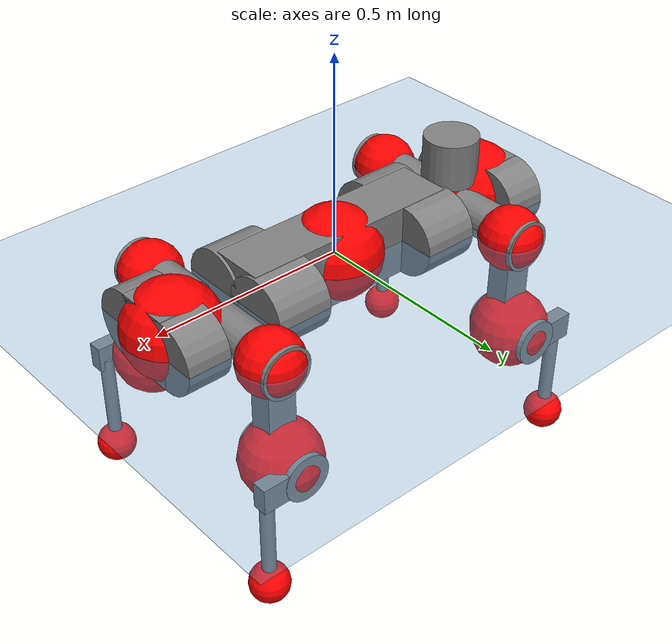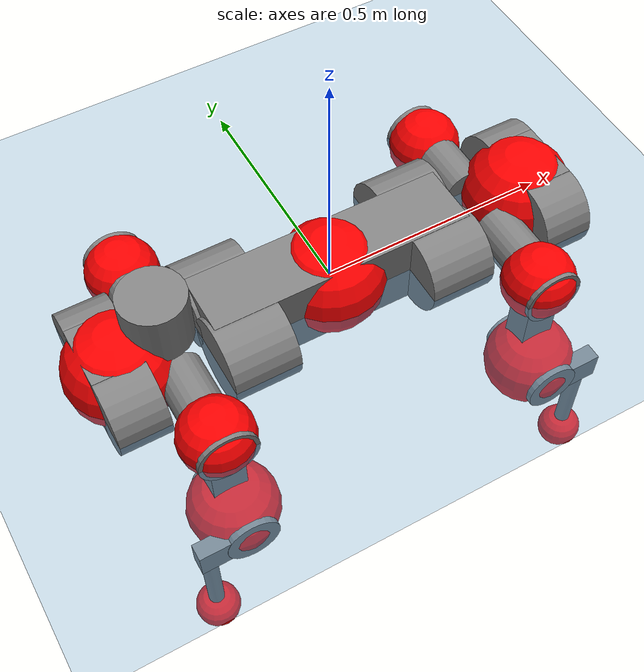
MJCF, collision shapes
<mujoco model="anymal_c">
  <compiler angle="radian" assetdir="assets" balanceinertia="true" inertiafromgeom="false"/>

  <option timestep="0.005" density="1.2" viscosity="2e-05"/>

  <size nkey="1"/>

  <visual>
    <quality shadowsize="8192"/>
    <map shadowclip="0.5"/>
  </visual>

  <default>
    <default class="/">
      <material specular="0" shininess="0.25"/>
      <geom contype="0" conaffinity="0" group="1" solref="-1000 -80"/>
      <site size="0.01 0.005 0.005" group="5"/>
      <general forcelimited="true" forcerange="-80 80" biastype="affine" gainprm="80" biasprm="0 -80 -2"/>
      <default class="anymal_c">
        <joint armature="0.01" damping="0.01" frictionloss="0.1"/>
        <default class="visual">
          <geom type="mesh" group="2"/>
          <default class="visual_zflip"/>
        </default>
        <default class="collision">
          <geom type="cylinder" group="3"/>
          <default class="foot">
            <geom size="0.03 0 0" type="sphere" condim="6" priority="1" friction="0.8 0.02 0.01" solimp="0.015 1 0.03"/>
          </default>
        </default>
      </default>
      <default class="reward_collision_sphere">
        <geom group="5" rgba="1 0 0 1"/>
      </default>
    </default>
  </default>

  <asset>
    <texture type="skybox" colorspace="auto" name="//unnamed_texture_0" builtin="gradient" rgb1="0.95 0.95 0.95" rgb2="0.95 0.95 0.95" width="100" height="600"/>
    <texture type="2d" colorspace="auto" name="texplane" builtin="checker" rgb1="0.345 0.575 0.748" rgb2="0.345 0.575 0.748" markrgb="1 1 1" width="512" height="512"/>
    <texture type="2d" colorspace="linear" name="base" file="base.png"/>
    <texture type="2d" colorspace="linear" name="top_shell" file="top_shell.png"/>
    <texture type="2d" colorspace="linear" name="bottom_shell" file="bottom_shell.png"/>
    <texture type="2d" colorspace="linear" name="remote" file="remote.png"/>
    <texture type="2d" colorspace="linear" name="hatch" file="hatch.png"/>
    <texture type="2d" colorspace="linear" name="handle" file="handle.png"/>
    <texture type="2d" colorspace="linear" name="face" file="face.png"/>
    <texture type="2d" colorspace="linear" name="battery" file="battery.png"/>
    <texture type="2d" colorspace="linear" name="lidar_cage" file="lidar_cage.png"/>
    <texture type="2d" colorspace="linear" name="depth_camera" file="depth_camera.png"/>
    <texture type="2d" colorspace="linear" name="wide_angle_camera" file="wide_angle_camera.png"/>
    <texture type="2d" colorspace="linear" name="lidar" file="lidar.png"/>
    <texture type="2d" colorspace="linear" name="drive" file="drive.png"/>
    <texture type="2d" colorspace="linear" name="hip_l" file="hip_l.png"/>
    <texture type="2d" colorspace="linear" name="shank_l" file="shank_l.png"/>
    <texture type="2d" colorspace="linear" name="foot" file="foot.png"/>
    <texture type="2d" colorspace="linear" name="thigh" file="thigh.png"/>
    <texture type="2d" colorspace="linear" name="shank_r" file="shank_r.png"/>
    <texture type="2d" colorspace="linear" name="hip_r" file="hip_r.png"/>
    <material name="MatPlane" class="/" texture="texplane" texuniform="true" texrepeat="2 2" specular="0.9" shininess="0.5"/>
    <material name="black_plastic" class="/" rgba="0.007 0.007 0.007 1"/>
    <material name="green" class="/" rgba="0.052 0.178 0.033 1"/>
    <material name="red" class="/" rgba="0.178 0.006 0.005 1"/>
    <material name="yellow" class="/" rgba="0.178 0.119 0.006 1"/>
    <material name="lwl" class="/" rgba="0.8 0.8 0.8 1"/>
    <material name="base" class="/" texture="base"/>
    <material name="top_shell" class="/" texture="top_shell"/>
    <material name="bottom_shell" class="/" texture="bottom_shell"/>
    <material name="hip_l" class="/" texture="hip_l"/>
    <material name="thigh" class="/" texture="thigh"/>
    <material name="shank_l" class="/" texture="shank_l"/>
    <material name="foot" class="/" texture="foot"/>
    <material name="hip_r" class="/" texture="hip_r"/>
    <material name="shank" class="/" texture="shank_r"/>
    <material name="hatch" class="/" texture="hatch"/>
    <material name="remote" class="/" texture="remote"/>
    <material name="handle" class="/" texture="handle"/>
    <material name="face" class="/" texture="face"/>
    <material name="depth_camera" class="/" texture="depth_camera"/>
    <material name="wide_angle_camera" class="/" texture="wide_angle_camera"/>
    <material name="battery" class="/" texture="battery"/>
    <material name="lidar_cage" class="/" texture="lidar_cage"/>
    <material name="lidar" class="/" texture="lidar"/>
    <material name="drive" class="/" texture="drive"/>
    <mesh name="base_0" class="/" file="base_0.obj"/>
    <mesh name="base_1" class="/" file="base_1.obj"/>
    <mesh name="base_2" class="/" file="base_2.obj"/>
    <mesh name="base_3" class="/" file="base_3.obj"/>
    <mesh name="base_4" class="/" file="base_4.obj"/>
    <mesh name="base_5" class="/" file="base_5.obj"/>
    <mesh name="top_shell" class="/" file="top_shell.obj"/>
    <mesh name="bottom_shell" class="/" file="bottom_shell.obj"/>
    <mesh name="remote" class="/" file="remote.obj"/>
    <mesh name="handle" class="/" file="handle.obj"/>
    <mesh name="face" class="/" file="face.obj"/>
    <mesh name="wide_angle_camera" class="/" file="wide_angle_camera.obj"/>
    <mesh name="depth_camera" class="/" file="depth_camera.obj"/>
    <mesh name="battery" class="/" file="battery.obj"/>
    <mesh name="lidar_cage" class="/" file="lidar_cage.obj"/>
    <mesh name="lidar" class="/" file="lidar.obj"/>
    <mesh name="drive" class="/" file="drive.obj"/>
    <mesh name="hip_l" class="/" file="hip_l.obj"/>
    <mesh name="thigh" class="/" file="thigh.obj"/>
    <mesh name="shank_l" class="/" file="shank_l.obj"/>
    <mesh name="foot" class="/" file="foot.obj"/>
    <mesh name="hip_r" class="/" file="hip_r.obj"/>
    <mesh name="hatch" class="/" file="hatch.obj"/>
    <mesh name="shank_r" class="/" file="shank_r.obj"/>
  </asset>

  <worldbody>
    <geom name="floor" class="/" size="100 100 0.125" type="plane" group="0" material="MatPlane"/>
    <light name="toplight_shadow" class="/" pos="0 0 5" dir="0.0990148 0.0990148 -0.990148" type="directional" ambient="0.04 0.04 0.04" diffuse="0.55 0.55 0.55" specular="0.12 0.12 0.12"/>
    <light name="toplight_fill" class="/" pos="0 0 5" dir="0.0990148 0.0990148 -0.990148" type="directional" castshadow="false" ambient="0.04 0.04 0.04" diffuse="0.3 0.3 0.3" specular="0.08 0.08 0.08"/>
    <body name="trunk" childclass="anymal_c" pos="-0.0025356 -0.00252208 -0.000462652" quat="0.999999 -0.00132483 -0.000429632 5.69955e-05">
      <inertial pos="0.000188348 0.000953064 0.0438741" quat="0.499532 0.498974 0.50174 0.49975" mass="18.1379" diaginertia="0.71933 0.830411 0.113418"/>
      <joint name="//unnamed_joint_0" type="free" armature="0" damping="0" frictionloss="0"/>
      <geom name="//unnamed_geom_1" class="visual" material="green" mesh="base_0"/>
      <geom name="//unnamed_geom_2" class="visual" material="yellow" mesh="base_1"/>
      <geom name="//unnamed_geom_3" class="visual" material="red" mesh="base_2"/>
      <geom name="//unnamed_geom_4" class="visual" material="black_plastic" mesh="base_3"/>
      <geom name="//unnamed_geom_5" class="visual" material="lwl" mesh="base_4"/>
      <geom name="//unnamed_geom_6" class="visual" material="base" mesh="base_5"/>
      <geom name="trunk_1" class="collision" size="0.28598 0.0690296 0.0887523" type="box"/>
      <geom name="trunk_2" class="collision" size="0.0887523 0.0714949" pos="0.222673 0.0743007 0" quat="0.707107 0 0.707107 0"/>
      <geom name="trunk_3" class="collision" size="0.0887523 0.0714949" pos="-0.222673 0.0743007 0" quat="0.707107 0 0.707107 0"/>
      <geom name="trunk_4" class="collision" size="0.0887523 0.0714949" pos="0.222673 -0.0743007 0" quat="0.707107 0 0.707107 0"/>
      <geom name="trunk_5" class="collision" size="0.0887523 0.0714949" pos="-0.222673 -0.0743007 0" quat="0.707107 0 0.707107 0"/>
      <geom name="//unnamed_geom_12" class="visual" material="top_shell" mesh="top_shell"/>
      <geom name="//unnamed_geom_13" class="visual" material="bottom_shell" mesh="bottom_shell"/>
      <geom name="//unnamed_geom_14" class="visual" material="remote" mesh="remote"/>
      <geom name="//unnamed_geom_15" class="visual" material="handle" mesh="handle"/>
      <geom name="//unnamed_geom_16" class="visual" pos="0.424358 0 0" quat="1 0 0 0" material="face" mesh="face"/>
      <geom name="trunk_6" class="collision" size="0.0542375 0.0690296 0.0887523" pos="0.480666 0 0" type="box"/>
      <geom name="//unnamed_geom_18" class="collision" size="0.0887523 0.0542375" pos="0.480666 0.0743007 0" quat="0.707107 0 0.707107 0"/>
      <geom name="//unnamed_geom_19" class="collision" size="0.0887523 0.0542375" pos="0.480666 -0.0743007 0" quat="0.707107 0 0.707107 0"/>
      <geom name="//unnamed_geom_20" class="visual" pos="0.472623 0 -0.0243525" quat="0.965926 0 0.258819 0" material="depth_camera" mesh="depth_camera"/>
      <geom name="//unnamed_geom_21" class="visual" pos="0.525201 0 0.0130716" material="wide_angle_camera" mesh="wide_angle_camera"/>
      <geom name="//unnamed_geom_22" class="visual_zflip" pos="-0.424358 0 0" quat="0 0 0 1" material="face" mesh="face"/>
      <geom name="trunk_7" class="collision" size="0.0542375 0.0690296 0.0887523" pos="-0.480666 0 0" quat="0 0 0 1" type="box"/>
      <geom name="//unnamed_geom_24" class="collision" size="0.0887523 0.0542375" pos="-0.480666 -0.0743007 0" quat="0 -0.707107 0 0.707107"/>
      <geom name="//unnamed_geom_25" class="collision" size="0.0887523 0.0542375" pos="-0.480666 0.0743007 0" quat="0 -0.707107 0 0.707107"/>
      <geom name="//unnamed_geom_26" class="visual" pos="-0.472623 0 -0.0243525" quat="0 -0.258819 0 0.965926" material="depth_camera" mesh="depth_camera"/>
      <geom name="//unnamed_geom_27" class="visual_zflip" pos="-0.525201 0 0.0130716" quat="0 0 0 1" material="wide_angle_camera" mesh="wide_angle_camera"/>
      <geom name="//unnamed_geom_28" class="visual" material="battery" mesh="battery"/>
      <geom name="//unnamed_geom_29" class="visual" pos="0 0.0816455 0.0265106" quat="0.683013 -0.183013 0.183013 0.683013" material="depth_camera" mesh="depth_camera"/>
      <geom name="//unnamed_geom_30" class="visual" pos="0 -0.0816455 0.0265106" quat="0.683013 0.183013 0.183013 -0.683013" material="depth_camera" mesh="depth_camera"/>
      <geom name="//unnamed_geom_31" class="visual" pos="-0.372657 0 0.0641793" quat="1 0 0 0" material="lidar_cage" mesh="lidar_cage"/>
      <geom name="trunk_8" class="collision" size="0.0690296 0.0591682" pos="-0.372657 0 0.11657"/>
      <geom name="//unnamed_geom_33" class="visual" pos="-0.372657 1.47937e-05 0.124167" quat="0.707107 0 0 -0.707107" material="lidar" mesh="lidar"/>
      <geom name="//unnamed_geom_34" class="visual" pos="0.307033 0.110323 3.24736e-09" quat="0.258819 0.965926 0 0" material="drive" mesh="drive"/>
      <geom name="//unnamed_geom_35" class="visual" pos="0.307033 -0.110323 -3.24736e-09" quat="0.258819 -0.965926 0 0" material="drive" mesh="drive"/>
      <geom name="//unnamed_geom_36" class="visual" pos="-0.307033 0.110323 -3.24736e-09" quat="0 0 0.965926 -0.258819" material="drive" mesh="drive"/>
      <geom name="//unnamed_geom_37" class="visual" pos="-0.307033 -0.110323 3.24736e-09" quat="0 0 -0.965926 -0.258819" material="drive" mesh="drive"/>
      <geom name="//unnamed_geom_38" class="visual" pos="0.118759 0 0.0637427" quat="1 0 0 0" material="hatch" mesh="hatch"/>
      <geom name="//unnamed_geom_39" class="reward_collision_sphere" size="0.118336"/>
      <geom name="//unnamed_geom_40" class="reward_collision_sphere" size="0.118336" pos="0.460703 0 0"/>
      <geom name="//unnamed_geom_41" class="reward_collision_sphere" size="0.118336" pos="-0.460703 0 0"/>
      <site name="imu" pos="0.257139 0.00990775 0.0433326" size="0.00986137"/>
      <camera name="track" pos="0 -2.12288 0" quat="0.707107 0.707107 0 0" mode="trackcom"/>
      <camera name="ego_camera" pos="0.460703 0 -0.0349275" quat="-0.5 -0.5 0.5 0.5"/>
      <body name="LF_HIP" pos="0.30615 0.108899 0.00132501" quat="0.25808 0.966123 -0.000147152 -0.000825646">
        <inertial pos="0.0557596 -0.0173924 -0.00868875" quat="-0.127784 0.709824 -0.135346 0.67934" mass="2.79287" diaginertia="0.00690786 0.00662913 0.00176544"/>
        <joint name="LF_HAA" pos="0 0 0" axis="0.999994 0.00228132 0.00255812" range="-0.716446 0.433997" armature="0.0112158" damping="0" frictionloss="0.102168"/>
        <geom name="//unnamed_geom_42" class="visual" pos="0 0.000191027 -3.13761e-05" quat="0.258819 -0.965926 0 0" material="hip_l" mesh="hip_l"/>
        <geom name="//unnamed_geom_43" class="visual" pos="0.0613246 -0.0747368 -0.0417569" quat="0.183013 -0.683013 0.683013 0.183013" material="drive" mesh="drive"/>
        <geom name="//unnamed_geom_44" class="collision" size="0.0493068 0.0690296" pos="0.0613246 -0.0126946 -0.00602936" quat="-0.353553 -0.612372 0.612372 -0.353553"/>
        <body name="LF_THIGH" pos="0.062189 -0.0788281 -0.0363293" quat="0.183043 -0.683014 0.683007 0.182998">
          <inertial pos="0.034213 0.00024129 -0.211701" quat="0.993162 -0.00421486 -0.0812086 0.0837658" mass="2.97388" diaginertia="0.0342844 0.0399877 0.00211503"/>
          <joint name="LF_HFE" pos="0 0 0" axis="0.999974 0.00586992 0.00410616" stiffness="0.0102154" range="-3.19946 3.19212" armature="0.0112402" damping="0" frictionloss="0.10533"/>
          <geom name="//unnamed_geom_45" class="visual" pos="-0.000749188 -1.18055e-06 0" quat="0.707107 0 0 -0.707107" material="thigh" mesh="thigh"/>
          <geom name="//unnamed_geom_46" class="collision" size="0.0640989 0.0394455" pos="0.0409513 0 0" quat="0.5 0.5 -0.5 -0.5"/>
          <geom name="//unnamed_geom_47" class="collision" size="0.0369801 0.0295841 0.139355" pos="0.0307135 0 -0.123394" quat="0.707107 0 0 -0.707107" type="box"/>
          <geom name="//unnamed_geom_48" class="visual" pos="0.102686 0 -0.248858" quat="1 0 0 0" material="drive" mesh="drive"/>
          <geom name="//unnamed_geom_49" class="collision" size="0.0493068 0.0690296" pos="0.0310206 0 -0.248858" quat="0.707107 0 0.707107 0"/>
          <geom name="//unnamed_geom_50" class="reward_collision_sphere" size="0.0788909" pos="0.0255946 0 0"/>
          <body name="LF_SHANK" pos="0.10253 -0.00105803 -0.249307" quat="0.999999 -0.000331886 -0.000363297 -0.000980181">
            <inertial pos="0.00757365 -0.0633948 -0.073152" quat="0.99245 -0.121945 -0.00189726 -0.0129674" mass="0.559649" diaginertia="0.0114292 0.0126477 0.000550312"/>
            <joint name="LF_KFE" pos="0 0 0" axis="0.999995 -0.00209512 0.00249527" range="-3.13098 3.08347" armature="0.00894975" damping="0.00965808" frictionloss="0.1035"/>
            <geom name="//unnamed_geom_51" class="visual" pos="-0.000244294 -0.00130259 0" quat="0.707107 0 0 -0.707107" material="shank_l" mesh="shank_l"/>
            <geom name="LF_kfe_act" class="collision" size="0.0591682 0.0197227" pos="0.0204757 0 0" quat="0.5 0.5 -0.5 -0.5"/>
            <geom name="//unnamed_geom_53" class="collision" size="0.0567019 0.0332821 0.0187366" pos="0.0204757 -0.0610317 0" quat="0.5 0.5 -0.5 -0.5" type="box"/>
            <geom name="//unnamed_geom_54" class="visual" pos="0.0133604 -0.0937733 -0.295111" quat="0.382683 0 0 -0.92388" material="foot" mesh="foot"/>
            <geom name="LF_calf" class="collision" size="0.0172574 0.139294" pos="0.0133604 -0.0933535 -0.147556" quat="0.707107 0 0 -0.707107"/>
            <geom name="LF_foot" class="foot" size="0.0327065" pos="0.0133604 -0.0933535 -0.275464" quat="0.707107 0 0 -0.707107"/>
            <geom name="//unnamed_geom_57" class="reward_collision_sphere" size="0.0986137" pos="-0.0511892 0 0"/>
            <geom name="//unnamed_geom_58" class="reward_collision_sphere" size="0.0493068" pos="0.0133604 -0.0933535 -0.275464"/>
            <site name="LF_foot" class="foot" pos="0.0133604 -0.0933535 -0.275464" quat="0.707107 0 0 -0.707107" size="0.00986137"/>
          </body>
        </body>
      </body>
      <body name="RF_HIP" pos="0.307488 -0.108166 0.00103377" quat="0.258651 -0.965971 0.000220671 -6.33203e-05">
        <inertial pos="0.0608936 0.0162974 -0.00750668" quat="0.135674 0.679148 0.128721 0.709776" mass="2.81341" diaginertia="0.00688453 0.00691787 0.00167457"/>
        <joint name="RF_HAA" pos="0 0 0" axis="1 -0.000332978 -0.000278584" range="-0.456695 0.733242" armature="0.00871627" damping="0.0104722" frictionloss="0.110872"/>
        <geom name="//unnamed_geom_59" class="visual" pos="0 -0.000191026 -3.1376e-05" quat="0.258819 0.965926 0 0" material="hip_r" mesh="hip_r"/>
        <geom name="//unnamed_geom_60" class="visual" pos="0.0613246 0.0747368 -0.0417569" quat="0.183013 0.683013 0.683013 -0.183013" material="drive" mesh="drive"/>
        <geom name="//unnamed_geom_61" class="collision" size="0.0493068 0.0690296" pos="0.0613246 0.0126946 -0.00602936" quat="-0.353553 0.612372 0.612372 0.353553"/>
        <body name="RF_THIGH" pos="0.0603103 0.0770266 -0.034226" quat="0.183859 0.682813 0.68323 -0.182095">
          <inertial pos="0.0290525 -0.00247068 -0.213596" quat="0.99301 -0.00664101 -0.0761138 0.0899597" mass="2.85535" diaginertia="0.0340478 0.0397363 0.00204495"/>
          <joint name="RF_HFE" pos="0 0 0" axis="1 -6.03809e-05 8.0686e-05" stiffness="0.00874285" range="-3.13584 3.1347" armature="0.00992995" damping="0.0107752" frictionloss="0.102448"/>
          <geom name="//unnamed_geom_62" class="visual" pos="-0.000749188 -1.18055e-06 0" quat="0.707107 0 0 -0.707107" material="thigh" mesh="thigh"/>
          <geom name="//unnamed_geom_63" class="collision" size="0.0640989 0.0394455" pos="0.0409513 0 0" quat="0.5 0.5 0.5 0.5"/>
          <geom name="//unnamed_geom_64" class="collision" size="0.0369801 0.0295841 0.139355" pos="0.0307135 0 -0.123394" quat="0.707107 0 0 0.707107" type="box"/>
          <geom name="//unnamed_geom_65" class="visual" pos="0.102686 0 -0.248858" quat="1 0 0 0" material="drive" mesh="drive"/>
          <geom name="//unnamed_geom_66" class="collision" size="0.0493068 0.0690296" pos="0.0310206 0 -0.248858" quat="0.707107 0 0.707107 0"/>
          <geom name="//unnamed_geom_67" class="reward_collision_sphere" size="0.0788909" pos="0.0255946 0 0"/>
          <body name="RF_SHANK" pos="0.104713 -0.000315502 -0.247602" quat="1 -5.74234e-05 -4.47767e-06 -2.44201e-05">
            <inertial pos="0.00747585 0.0652571 -0.0696767" quat="0.993099 0.115448 0.000359403 0.0206518" mass="0.579383" diaginertia="0.0122454 0.0124637 0.000589564"/>
            <joint name="RF_KFE" pos="0 0 0" axis="0.999897 0.00368921 0.0138688" range="-3.1199 3.15282" armature="0.00979775" damping="0.0168706" frictionloss="0.0949274"/>
            <geom name="//unnamed_geom_68" class="visual" pos="-0.000244293 0.00130259 0" quat="0.707107 0 0 0.707107" material="shank" mesh="shank_r"/>
            <geom name="RF_kfe_act" class="collision" size="0.0591682 0.0197227" pos="0.0204757 0 0" quat="0.5 0.5 0.5 0.5"/>
            <geom name="//unnamed_geom_70" class="collision" size="0.0567019 0.0332821 0.0187366" pos="0.0204757 0.0610317 0" quat="0.5 0.5 0.5 0.5" type="box"/>
            <geom name="//unnamed_geom_71" class="visual" pos="0.0133603 0.0937733 -0.295111" quat="0.382683 0 0 0.92388" material="foot" mesh="foot"/>
            <geom name="RF_calf" class="collision" size="0.0172574 0.139294" pos="0.0133604 0.0933535 -0.147556" quat="0.707107 0 0 0.707107"/>
            <geom name="RF_foot" class="foot" size="0.0283051" pos="0.0133604 0.0933535 -0.275464" quat="0.707107 0 0 0.707107"/>
            <geom name="//unnamed_geom_74" class="reward_collision_sphere" size="0.0986137" pos="-0.0511892 0 0"/>
            <geom name="//unnamed_geom_75" class="reward_collision_sphere" size="0.0493068" pos="0.0133604 0.0933535 -0.275464"/>
            <site name="RF_foot" class="foot" pos="0.0133604 0.0933535 -0.275464" quat="0.707107 0 0 0.707107" size="0.00986137"/>
          </body>
        </body>
      </body>
      <body name="LH_HIP" pos="-0.305676 0.109444 0.00233713" quat="0.000878829 0.000207822 0.966005 -0.258521">
        <inertial pos="0.060651 0.0169747 -0.00792271" quat="0.13536 0.679079 0.127625 0.7101" mass="2.64008" diaginertia="0.00658939 0.00685846 0.00168757"/>
        <joint name="LH_HAA" pos="0 0 0" axis="0.99998 -0.000959624 -0.00618642" stiffness="0.00226477" range="-0.472646 0.701449" armature="0.00992504" damping="0.0102348" frictionloss="0.100624"/>
        <geom name="//unnamed_geom_76" class="visual" pos="0 -0.000191026 -3.1376e-05" quat="-0.258819 -0.965926 0 0" material="hip_r" mesh="hip_r"/>
        <geom name="//unnamed_geom_77" class="visual" pos="0.0613246 0.0747368 -0.0417569" quat="0.183013 0.683013 0.683013 -0.183013" material="drive" mesh="drive"/>
        <geom name="//unnamed_geom_78" class="collision" size="0.0493068 0.0690296" pos="0.0613246 0.0126946 -0.00602936" quat="-0.353553 0.612372 0.612372 0.353553"/>
        <body name="LH_THIGH" pos="0.0581215 0.0782619 -0.0342005" quat="0.18372 0.68259 0.683445 -0.182265">
          <inertial pos="0.0311017 0.000953361 -0.213302" quat="0.993109 -0.012118 -0.0696163 0.093493" mass="2.83864" diaginertia="0.0337822 0.0388537 0.00212022"/>
          <joint name="LH_HFE" pos="0 0 0" axis="1 0.00010946 -0.000469292" range="-3.1206 3.12894" armature="0.00879459" damping="0" frictionloss="0.0981855"/>
          <geom name="//unnamed_geom_79" class="visual" pos="-0.000749188 -1.18055e-06 0" quat="0.707107 0 0 -0.707107" material="thigh" mesh="thigh"/>
          <geom name="//unnamed_geom_80" class="collision" size="0.0640989 0.0394455" pos="0.0409513 0 0" quat="0.5 0.5 -0.5 -0.5"/>
          <geom name="//unnamed_geom_81" class="collision" size="0.0369801 0.0295841 0.139355" pos="0.0307135 0 -0.123394" quat="0.707107 0 0 -0.707107" type="box"/>
          <geom name="//unnamed_geom_82" class="visual" pos="0.102686 0 -0.248858" quat="1 0 0 0" material="drive" mesh="drive"/>
          <geom name="//unnamed_geom_83" class="collision" size="0.0493068 0.0690296" pos="0.0310206 0 -0.248858" quat="0.707107 0 0.707107 0"/>
          <geom name="//unnamed_geom_84" class="reward_collision_sphere" size="0.0788909" pos="0.0255946 0 0"/>
          <body name="LH_SHANK" pos="0.10267 -0.00140716 -0.248175" quat="1 3.81531e-06 4.1222e-05 1.45638e-05">
            <inertial pos="0.00564705 0.0650353 -0.0685123" quat="0.992819 0.116965 -0.00168828 0.0250321" mass="0.561672" diaginertia="0.0114725 0.0125326 0.000569526"/>
            <joint name="LH_KFE" pos="0 0 0" axis="1 0.000208812 0.000257683" stiffness="0.00243943" range="-3.13143 3.13972" armature="0.00950689" damping="0" frictionloss="0.0960902"/>
            <geom name="//unnamed_geom_85" class="visual" pos="-0.000244293 0.00130259 0" quat="-0.707107 0 0 -0.707107" material="shank" mesh="shank_r"/>
            <geom name="LH_kfe_act" class="collision" size="0.0591682 0.0197227" pos="0.0204757 0 0" quat="0.5 0.5 -0.5 -0.5"/>
            <geom name="//unnamed_geom_87" class="collision" size="0.0567019 0.0332821 0.0187366" pos="0.0204757 0.0610317 0" quat="0.5 0.5 -0.5 -0.5" type="box"/>
            <geom name="//unnamed_geom_88" class="visual" pos="0.0133603 0.0937733 -0.295111" quat="-0.382683 0 0 -0.92388" material="foot" mesh="foot"/>
            <geom name="LH_calf" class="collision" size="0.0172574 0.139294" pos="0.0133604 0.0933535 -0.147556" quat="0.707107 0 0 -0.707107"/>
            <geom name="LH_foot" class="foot" size="0.0331984" pos="0.0133604 0.0933535 -0.275464" quat="0.707107 0 0 -0.707107"/>
            <geom name="//unnamed_geom_91" class="reward_collision_sphere" size="0.0986137" pos="-0.0511892 0 0"/>
            <geom name="//unnamed_geom_92" class="reward_collision_sphere" size="0.0493068" pos="0.0133604 0.0933535 -0.275464"/>
            <site name="LH_foot" class="foot" pos="0.0133604 0.0933535 -0.275464" quat="0.707107 0 0 -0.707107" size="0.00986137"/>
          </body>
        </body>
      </body>
      <body name="RH_HIP" pos="-0.307085 -0.112678 0.00291937" quat="7.37957e-05 0.00114624 -0.966119 -0.258095">
        <inertial pos="0.0581515 -0.0135748 -0.00758055" quat="-0.137307 0.714682 -0.139106 0.671584" mass="2.65182" diaginertia="0.00669912 0.00676327 0.0016476"/>
        <joint name="RH_HAA" pos="0 0 0" axis="0.999985 -0.00347845 0.00428297" stiffness="0.00894498" range="-0.744165 0.501755" armature="0.0112544" damping="0.0196459" frictionloss="0.0848726"/>
        <geom name="//unnamed_geom_93" class="visual" pos="0 0.000191027 -3.13761e-05" quat="-0.258819 0.965926 0 0" material="hip_l" mesh="hip_l"/>
        <geom name="//unnamed_geom_94" class="visual" pos="0.0613246 -0.0747368 -0.0417569" quat="-0.183013 0.683013 -0.683013 -0.183013" material="drive" mesh="drive"/>
        <geom name="//unnamed_geom_95" class="collision" size="0.0493068 0.0690296" pos="0.0613246 -0.0126946 -0.00602936" quat="0.353553 0.612372 -0.612372 0.353553"/>
        <body name="RH_THIGH" pos="0.0605659 -0.0763614 -0.039294" quat="-0.183032 0.683218 -0.682758 -0.183178">
          <inertial pos="0.0315666 -0.00154959 -0.214424" quat="0.993177 -0.00534913 -0.080447 0.0842524" mass="2.88758" diaginertia="0.0336014 0.0400766 0.00204388"/>
          <joint name="RH_HFE" pos="0 0 0" axis="0.999998 0.00197777 -0.000388707" range="-3.19495 3.18775" armature="0.0106859" damping="0.0133613" frictionloss="0.101861"/>
          <geom name="//unnamed_geom_96" class="visual" pos="-0.000749188 -1.18055e-06 0" quat="0.707107 0 0 -0.707107" material="thigh" mesh="thigh"/>
          <geom name="//unnamed_geom_97" class="collision" size="0.0640989 0.0394455" pos="0.0409513 0 0" quat="0.5 0.5 0.5 0.5"/>
          <geom name="//unnamed_geom_98" class="collision" size="0.0369801 0.0295841 0.139355" pos="0.0307135 0 -0.123394" quat="0.707107 0 0 0.707107" type="box"/>
          <geom name="//unnamed_geom_99" class="visual" pos="0.102686 0 -0.248858" quat="1 0 0 0" material="drive" mesh="drive"/>
          <geom name="//unnamed_geom_100" class="collision" size="0.0493068 0.0690296" pos="0.0310206 0 -0.248858" quat="0.707107 0 0.707107 0"/>
          <geom name="//unnamed_geom_101" class="reward_collision_sphere" size="0.0788909" pos="0.0255946 0 0"/>
          <body name="RH_SHANK" pos="0.100355 0.00310612 -0.249479" quat="1 -0.000422731 0.000130489 0.00012339">
            <inertial pos="0.00779302 -0.0649905 -0.0687498" quat="0.992912 -0.116019 -0.003347 -0.0255943" mass="0.56264" diaginertia="0.0113225 0.0116732 0.000567232"/>
            <joint name="RH_KFE" pos="0 0 0" axis="0.999993 -0.00314322 0.00189814" range="-3.07304 3.17815" armature="0.00837085" damping="0.00228812" frictionloss="0.0958971"/>
            <geom name="//unnamed_geom_102" class="visual" pos="-0.000244294 -0.00130259 0" quat="0.707107 0 0 -0.707107" material="shank_l" mesh="shank_l"/>
            <geom name="RH_kfe_act" class="collision" size="0.0591682 0.0197227" pos="0.0204757 0 0" quat="0.5 0.5 0.5 0.5"/>
            <geom name="//unnamed_geom_104" class="collision" size="0.0567019 0.0332821 0.0187366" pos="0.0204757 -0.0610317 0" quat="0.5 0.5 0.5 0.5" type="box"/>
            <geom name="//unnamed_geom_105" class="visual" pos="0.0133604 -0.0937733 -0.295111" quat="0.382683 0 0 -0.92388" material="foot" mesh="foot"/>
            <geom name="RH_calf" class="collision" size="0.0172574 0.139294" pos="0.0133604 -0.0933535 -0.147556" quat="0.707107 0 0 0.707107"/>
            <geom name="RH_foot" class="foot" size="0.028864" pos="0.0133604 -0.0933535 -0.275464" quat="0.707107 0 0 0.707107"/>
            <geom name="//unnamed_geom_108" class="reward_collision_sphere" size="0.0986137" pos="-0.0511892 0 0"/>
            <geom name="//unnamed_geom_109" class="reward_collision_sphere" size="0.0493068" pos="0.0133604 -0.0933535 -0.275464"/>
            <site name="RH_foot" class="foot" pos="0.0133604 -0.0933535 -0.275464" quat="0.707107 0 0 0.707107" size="0.00986137"/>
          </body>
        </body>
      </body>
    </body>
  </worldbody>

  <contact>
    <pair class="/" geom1="floor" geom2="LF_foot" name="//unnamed_contact_0"/>
    <pair class="/" geom1="floor" geom2="RF_foot" name="//unnamed_contact_1"/>
    <pair class="/" geom1="floor" geom2="LH_foot" name="//unnamed_contact_2"/>
    <pair class="/" geom1="floor" geom2="RH_foot" name="//unnamed_contact_3"/>
  </contact>

  <actuator>
    <general name="LF_HAA" class="/" joint="LF_HAA" forcerange="-78.4013 78.4013" gainprm="78.9803" biasprm="0 -78.9803 -1.90543"/>
    <general name="LF_HFE" class="/" joint="LF_HFE" forcerange="-74.9209 74.9209" gainprm="78.9803" biasprm="0 -78.9803 -1.90543"/>
    <general name="LF_KFE" class="/" joint="LF_KFE" forcerange="-78.1938 78.1938" gainprm="78.9803" biasprm="0 -78.9803 -1.90543"/>
    <general name="RF_HAA" class="/" joint="RF_HAA" forcerange="-85.8363 85.8363" gainprm="78.9803" biasprm="0 -78.9803 -1.90543"/>
    <general name="RF_HFE" class="/" joint="RF_HFE" forcerange="-80.155 80.155" gainprm="78.9803" biasprm="0 -78.9803 -1.90543"/>
    <general name="RF_KFE" class="/" joint="RF_KFE" forcerange="-71.1886 71.1886" gainprm="78.9803" biasprm="0 -78.9803 -1.90543"/>
    <general name="LH_HAA" class="/" joint="LH_HAA" forcerange="-80.2351 80.2351" gainprm="78.9803" biasprm="0 -78.9803 -1.90543"/>
    <general name="LH_HFE" class="/" joint="LH_HFE" forcerange="-80.5237 80.5237" gainprm="78.9803" biasprm="0 -78.9803 -1.90543"/>
    <general name="LH_KFE" class="/" joint="LH_KFE" forcerange="-78.1542 78.1542" gainprm="78.9803" biasprm="0 -78.9803 -1.90543"/>
    <general name="RH_HAA" class="/" joint="RH_HAA" forcerange="-75.8811 75.8811" gainprm="78.9803" biasprm="0 -78.9803 -1.90543"/>
    <general name="RH_HFE" class="/" joint="RH_HFE" forcerange="-80.2803 80.2803" gainprm="78.9803" biasprm="0 -78.9803 -1.90543"/>
    <general name="RH_KFE" class="/" joint="RH_KFE" forcerange="-87.0695 87.0695" gainprm="78.9803" biasprm="0 -78.9803 -1.90543"/>
  </actuator>

  <sensor>
    <gyro site="imu" name="imu_angular_velocity"/>
    <velocimeter site="imu" name="imu_linear_velocity"/>
    <framelinvel objtype="site" objname="LF_foot" name="LF_foot_global_linear_velocity"/>
    <framelinvel objtype="site" objname="RF_foot" name="RF_foot_global_linear_velocity"/>
    <framelinvel objtype="site" objname="LH_foot" name="LH_foot_global_linear_velocity"/>
    <framelinvel objtype="site" objname="RH_foot" name="RH_foot_global_linear_velocity"/>
  </sensor>

  <keyframe>
    <key name="home" qpos="0 0 0.55 1 0 0 0 0 0.4 -0.8 0 -0.4 0.8 0 -0.4 0.8 0 0.4 -0.8"/>
  </keyframe>
</mujoco>
